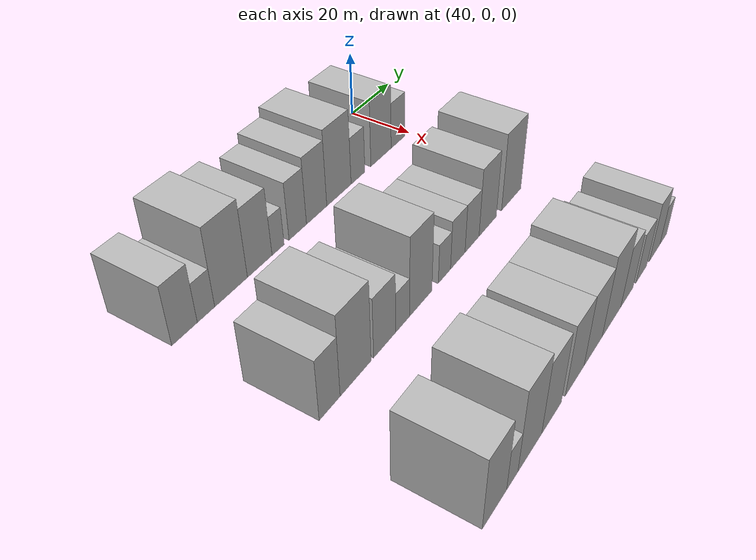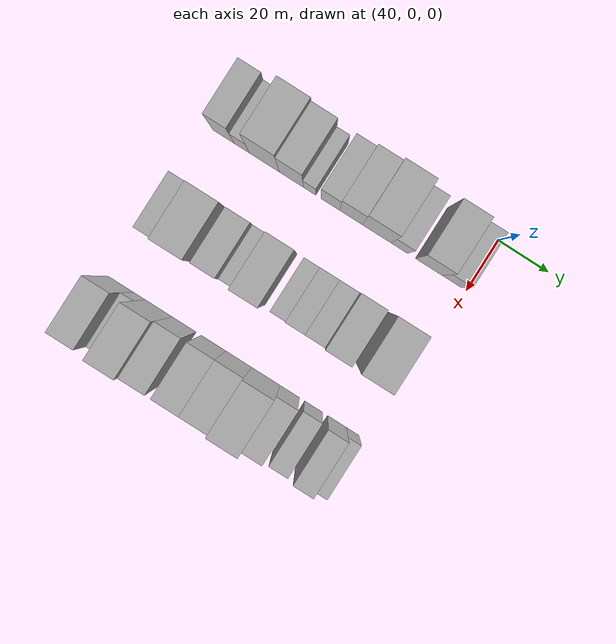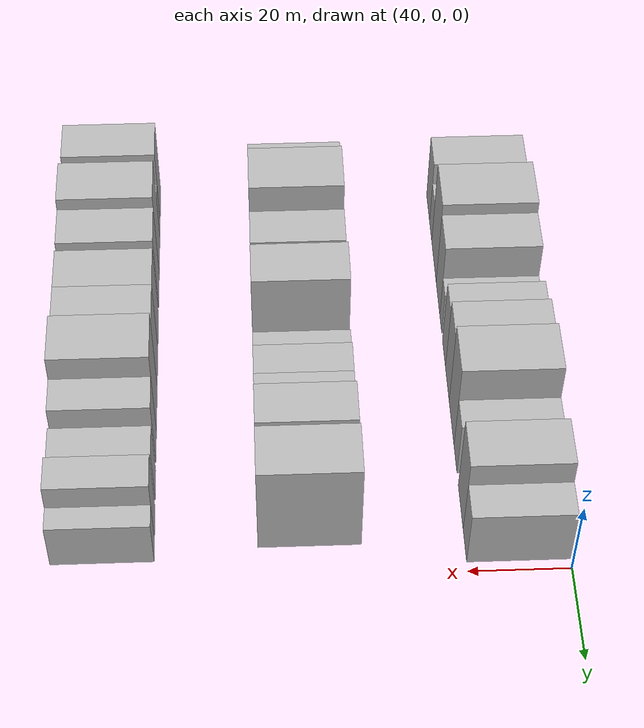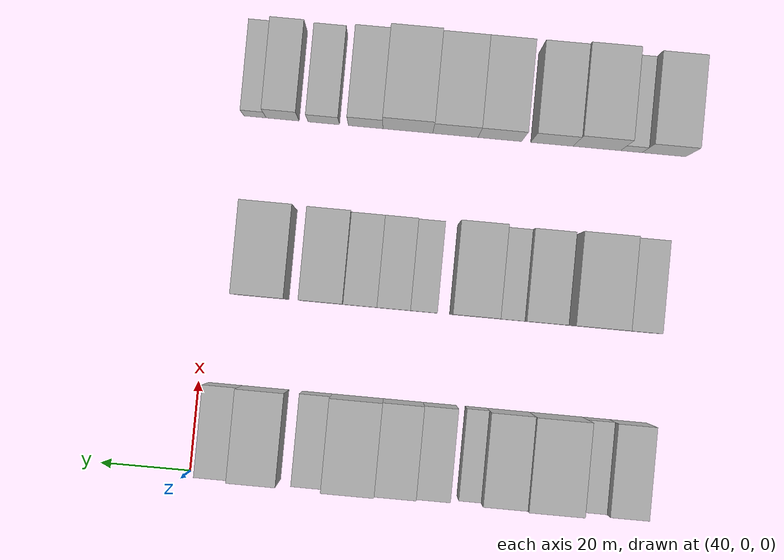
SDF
<sdf version="1.6">
 <world name="default">
  <model name="building_30">
   <static>1</static>
   <pose>50.0000 -95.8908 0 0.000000 0.000000 0.000000</pose>
   <link name="link">
    <pose>0 0 9.00 0 0 0</pose>
    <collision name="collision"><geometry><box><size>20.0000 8.3976 18.0000</size></box></geometry></collision>
    <visual name="visual">
     <cast_shadows>0</cast_shadows>
     <geometry><box><size>20.0000 8.3976 18.0000</size></box></geometry>
     <material>
      <script>
       <uri>model://HANNAS_wall/materials/scripts</uri>
       <uri>model://HANNAS_wall/materials/textures</uri>
       <name>vrc/HANNAS_wall</name>
      </script>
     </material>
    </visual>
   </link>
  </model>
  <model name="building_31">
   <static>1</static>
   <pose>50.0000 -88.7096 0 0.000000 0.000000 0.000000</pose>
   <link name="link">
    <pose>0 0 6.00 0 0 0</pose>
    <collision name="collision"><geometry><box><size>20.0000 5.9648 12.0000</size></box></geometry></collision>
    <visual name="visual">
     <cast_shadows>0</cast_shadows>
     <geometry><box><size>20.0000 5.9648 12.0000</size></box></geometry>
     <material>
      <script>
       <uri>model://HANNAS_wall/materials/scripts</uri>
       <uri>model://HANNAS_wall/materials/textures</uri>
       <name>vrc/HANNAS_wall</name>
      </script>
     </material>
    </visual>
   </link>
  </model>
  <model name="building_32">
   <static>1</static>
   <pose>50.0000 -79.7945 0 0.000000 0.000000 0.000000</pose>
   <link name="link">
    <pose>0 0 12.00 0 0 0</pose>
    <collision name="collision"><geometry><box><size>20.0000 11.8655 24.0000</size></box></geometry></collision>
    <visual name="visual">
     <cast_shadows>0</cast_shadows>
     <geometry><box><size>20.0000 11.8655 24.0000</size></box></geometry>
     <material>
      <script>
       <uri>model://HANNAS_wall/materials/scripts</uri>
       <uri>model://HANNAS_wall/materials/textures</uri>
       <name>vrc/HANNAS_wall</name>
      </script>
     </material>
    </visual>
   </link>
  </model>
  <model name="building_33">
   <static>1</static>
   <pose>50.0000 -69.1107 0 0.000000 0.000000 0.000000</pose>
   <link name="link">
    <pose>0 0 10.50 0 0 0</pose>
    <collision name="collision"><geometry><box><size>20.0000 9.5022 21.0000</size></box></geometry></collision>
    <visual name="visual">
     <cast_shadows>0</cast_shadows>
     <geometry><box><size>20.0000 9.5022 21.0000</size></box></geometry>
     <material>
      <script>
       <uri>model://HANNAS_wall/materials/scripts</uri>
       <uri>model://HANNAS_wall/materials/textures</uri>
       <name>vrc/HANNAS_wall</name>
      </script>
     </material>
    </visual>
   </link>
  </model>
  <model name="building_34">
   <static>1</static>
   <pose>50.0000 -61.9324 0 0.000000 0.000000 0.000000</pose>
   <link name="link">
    <pose>0 0 6.00 0 0 0</pose>
    <collision name="collision"><geometry><box><size>20.0000 4.8543 12.0000</size></box></geometry></collision>
    <visual name="visual">
     <cast_shadows>0</cast_shadows>
     <geometry><box><size>20.0000 4.8543 12.0000</size></box></geometry>
     <material>
      <script>
       <uri>model://HANNAS_wall/materials/scripts</uri>
       <uri>model://HANNAS_wall/materials/textures</uri>
       <name>vrc/HANNAS_wall</name>
      </script>
     </material>
    </visual>
   </link>
  </model>
  <model name="building_35">
   <static>1</static>
   <pose>50.0000 -53.8134 0 0.000000 0.000000 0.000000</pose>
   <link name="link">
    <pose>0 0 9.00 0 0 0</pose>
    <collision name="collision"><geometry><box><size>20.0000 7.3838 18.0000</size></box></geometry></collision>
    <visual name="visual">
     <cast_shadows>0</cast_shadows>
     <geometry><box><size>20.0000 7.3838 18.0000</size></box></geometry>
     <material>
      <script>
       <uri>model://HANNAS_wall/materials/scripts</uri>
       <uri>model://HANNAS_wall/materials/textures</uri>
       <name>vrc/HANNAS_wall</name>
      </script>
     </material>
    </visual>
   </link>
  </model>
  <model name="building_36">
   <static>1</static>
   <pose>50.0000 -45.6521 0 0.000000 0.000000 0.000000</pose>
   <link name="link">
    <pose>0 0 10.50 0 0 0</pose>
    <collision name="collision"><geometry><box><size>20.0000 8.9389 21.0000</size></box></geometry></collision>
    <visual name="visual">
     <cast_shadows>0</cast_shadows>
     <geometry><box><size>20.0000 8.9389 21.0000</size></box></geometry>
     <material>
      <script>
       <uri>model://HANNAS_wall/materials/scripts</uri>
       <uri>model://HANNAS_wall/materials/textures</uri>
       <name>vrc/HANNAS_wall</name>
      </script>
     </material>
    </visual>
   </link>
  </model>
  <model name="building_37">
   <static>1</static>
   <pose>50.0000 -35.5213 0 0.000000 0.000000 0.000000</pose>
   <link name="link">
    <pose>0 0 12.00 0 0 0</pose>
    <collision name="collision"><geometry><box><size>20.0000 11.3226 24.0000</size></box></geometry></collision>
    <visual name="visual">
     <cast_shadows>0</cast_shadows>
     <geometry><box><size>20.0000 11.3226 24.0000</size></box></geometry>
     <material>
      <script>
       <uri>model://HANNAS_wall/materials/scripts</uri>
       <uri>model://HANNAS_wall/materials/textures</uri>
       <name>vrc/HANNAS_wall</name>
      </script>
     </material>
    </visual>
   </link>
  </model>
  <model name="building_38">
   <static>1</static>
   <pose>50.0000 -26.5018 0 0.000000 0.000000 0.000000</pose>
   <link name="link">
    <pose>0 0 7.50 0 0 0</pose>
    <collision name="collision"><geometry><box><size>20.0000 6.7164 15.0000</size></box></geometry></collision>
    <visual name="visual">
     <cast_shadows>0</cast_shadows>
     <geometry><box><size>20.0000 6.7164 15.0000</size></box></geometry>
     <material>
      <script>
       <uri>model://HANNAS_wall/materials/scripts</uri>
       <uri>model://HANNAS_wall/materials/textures</uri>
       <name>vrc/HANNAS_wall</name>
      </script>
     </material>
    </visual>
   </link>
  </model>
  <model name="building_39">
   <static>1</static>
   <pose>50.0000 -14.8969 0 0.000000 0.000000 0.000000</pose>
   <link name="link">
    <pose>0 0 10.50 0 0 0</pose>
    <collision name="collision"><geometry><box><size>20.0000 10.4936 21.0000</size></box></geometry></collision>
    <visual name="visual">
     <cast_shadows>0</cast_shadows>
     <geometry><box><size>20.0000 10.4936 21.0000</size></box></geometry>
     <material>
      <script>
       <uri>model://HANNAS_wall/materials/scripts</uri>
       <uri>model://HANNAS_wall/materials/textures</uri>
       <name>vrc/HANNAS_wall</name>
      </script>
     </material>
    </visual>
   </link>
  </model>
  <model name="building_40">
   <static>1</static>
   <pose>50.0000 -5.9136 0 0.000000 0.000000 0.000000</pose>
   <link name="link">
    <pose>0 0 7.50 0 0 0</pose>
    <collision name="collision"><geometry><box><size>20.0000 7.4729 15.0000</size></box></geometry></collision>
    <visual name="visual">
     <cast_shadows>0</cast_shadows>
     <geometry><box><size>20.0000 7.4729 15.0000</size></box></geometry>
     <material>
      <script>
       <uri>model://HANNAS_wall/materials/scripts</uri>
       <uri>model://HANNAS_wall/materials/textures</uri>
       <name>vrc/HANNAS_wall</name>
      </script>
     </material>
    </visual>
   </link>
  </model>
  <model name="building_119">
   <static>1</static>
   <pose>90.0000 -95.6875 0 0.000000 0.000000 0.000000</pose>
   <link name="link">
    <pose>0 0 9.00 0 0 0</pose>
    <collision name="collision"><geometry><box><size>20.0000 7.4646 18.0000</size></box></geometry></collision>
    <visual name="visual">
     <cast_shadows>0</cast_shadows>
     <geometry><box><size>20.0000 7.4646 18.0000</size></box></geometry>
     <material>
      <script>
       <uri>model://HANNAS_wall/materials/scripts</uri>
       <uri>model://HANNAS_wall/materials/textures</uri>
       <name>vrc/HANNAS_wall</name>
      </script>
     </material>
    </visual>
   </link>
  </model>
  <model name="building_120">
   <static>1</static>
   <pose>90.0000 -86.0916 0 0.000000 0.000000 0.000000</pose>
   <link name="link">
    <pose>0 0 12.00 0 0 0</pose>
    <collision name="collision"><geometry><box><size>20.0000 11.7271 24.0000</size></box></geometry></collision>
    <visual name="visual">
     <cast_shadows>0</cast_shadows>
     <geometry><box><size>20.0000 11.7271 24.0000</size></box></geometry>
     <material>
      <script>
       <uri>model://HANNAS_wall/materials/scripts</uri>
       <uri>model://HANNAS_wall/materials/textures</uri>
       <name>vrc/HANNAS_wall</name>
      </script>
     </material>
    </visual>
   </link>
  </model>
  <model name="building_121">
   <static>1</static>
   <pose>90.0000 -74.7376 0 0.000000 0.000000 0.000000</pose>
   <link name="link">
    <pose>0 0 9.00 0 0 0</pose>
    <collision name="collision"><geometry><box><size>20.0000 8.9810 18.0000</size></box></geometry></collision>
    <visual name="visual">
     <cast_shadows>0</cast_shadows>
     <geometry><box><size>20.0000 8.9810 18.0000</size></box></geometry>
     <material>
      <script>
       <uri>model://HANNAS_wall/materials/scripts</uri>
       <uri>model://HANNAS_wall/materials/textures</uri>
       <name>vrc/HANNAS_wall</name>
      </script>
     </material>
    </visual>
   </link>
  </model>
  <model name="building_122">
   <static>1</static>
   <pose>90.0000 -67.2730 0 0.000000 0.000000 0.000000</pose>
   <link name="link">
    <pose>0 0 6.00 0 0 0</pose>
    <collision name="collision"><geometry><box><size>20.0000 5.9482 12.0000</size></box></geometry></collision>
    <visual name="visual">
     <cast_shadows>0</cast_shadows>
     <geometry><box><size>20.0000 5.9482 12.0000</size></box></geometry>
     <material>
      <script>
       <uri>model://HANNAS_wall/materials/scripts</uri>
       <uri>model://HANNAS_wall/materials/textures</uri>
       <name>vrc/HANNAS_wall</name>
      </script>
     </material>
    </visual>
   </link>
  </model>
  <model name="building_123">
   <static>1</static>
   <pose>90.0000 -59.2426 0 0.000000 0.000000 0.000000</pose>
   <link name="link">
    <pose>0 0 12.00 0 0 0</pose>
    <collision name="collision"><geometry><box><size>20.0000 10.1126 24.0000</size></box></geometry></collision>
    <visual name="visual">
     <cast_shadows>0</cast_shadows>
     <geometry><box><size>20.0000 10.1126 24.0000</size></box></geometry>
     <material>
      <script>
       <uri>model://HANNAS_wall/materials/scripts</uri>
       <uri>model://HANNAS_wall/materials/textures</uri>
       <name>vrc/HANNAS_wall</name>
      </script>
     </material>
    </visual>
   </link>
  </model>
  <model name="building_124">
   <static>1</static>
   <pose>90.0000 -48.2401 0 0.000000 0.000000 0.000000</pose>
   <link name="link">
    <pose>0 0 6.00 0 0 0</pose>
    <collision name="collision"><geometry><box><size>20.0000 5.8925 12.0000</size></box></geometry></collision>
    <visual name="visual">
     <cast_shadows>0</cast_shadows>
     <geometry><box><size>20.0000 5.8925 12.0000</size></box></geometry>
     <material>
      <script>
       <uri>model://HANNAS_wall/materials/scripts</uri>
       <uri>model://HANNAS_wall/materials/textures</uri>
       <name>vrc/HANNAS_wall</name>
      </script>
     </material>
    </visual>
   </link>
  </model>
  <model name="building_125">
   <static>1</static>
   <pose>90.0000 -41.6613 0 0.000000 0.000000 0.000000</pose>
   <link name="link">
    <pose>0 0 7.50 0 0 0</pose>
    <collision name="collision"><geometry><box><size>20.0000 7.2651 15.0000</size></box></geometry></collision>
    <visual name="visual">
     <cast_shadows>0</cast_shadows>
     <geometry><box><size>20.0000 7.2651 15.0000</size></box></geometry>
     <material>
      <script>
       <uri>model://HANNAS_wall/materials/scripts</uri>
       <uri>model://HANNAS_wall/materials/textures</uri>
       <name>vrc/HANNAS_wall</name>
      </script>
     </material>
    </visual>
   </link>
  </model>
  <model name="building_126">
   <static>1</static>
   <pose>90.0000 -34.3579 0 0.000000 0.000000 0.000000</pose>
   <link name="link">
    <pose>0 0 7.50 0 0 0</pose>
    <collision name="collision"><geometry><box><size>20.0000 7.3419 15.0000</size></box></geometry></collision>
    <visual name="visual">
     <cast_shadows>0</cast_shadows>
     <geometry><box><size>20.0000 7.3419 15.0000</size></box></geometry>
     <material>
      <script>
       <uri>model://HANNAS_wall/materials/scripts</uri>
       <uri>model://HANNAS_wall/materials/textures</uri>
       <name>vrc/HANNAS_wall</name>
      </script>
     </material>
    </visual>
   </link>
  </model>
  <model name="building_127">
   <static>1</static>
   <pose>90.0000 -25.9698 0 0.000000 0.000000 0.000000</pose>
   <link name="link">
    <pose>0 0 10.50 0 0 0</pose>
    <collision name="collision"><geometry><box><size>20.0000 9.4343 21.0000</size></box></geometry></collision>
    <visual name="visual">
     <cast_shadows>0</cast_shadows>
     <geometry><box><size>20.0000 9.4343 21.0000</size></box></geometry>
     <material>
      <script>
       <uri>model://HANNAS_wall/materials/scripts</uri>
       <uri>model://HANNAS_wall/materials/textures</uri>
       <name>vrc/HANNAS_wall</name>
      </script>
     </material>
    </visual>
   </link>
  </model>
  <model name="building_128">
   <static>1</static>
   <pose>90.0000 -12.5943 0 0.000000 0.000000 0.000000</pose>
   <link name="link">
    <pose>0 0 12.00 0 0 0</pose>
    <collision name="collision"><geometry><box><size>20.0000 11.3168 24.0000</size></box></geometry></collision>
    <visual name="visual">
     <cast_shadows>0</cast_shadows>
     <geometry><box><size>20.0000 11.3168 24.0000</size></box></geometry>
     <material>
      <script>
       <uri>model://HANNAS_wall/materials/scripts</uri>
       <uri>model://HANNAS_wall/materials/textures</uri>
       <name>vrc/HANNAS_wall</name>
      </script>
     </material>
    </visual>
   </link>
  </model>
  <model name="building_200">
   <static>1</static>
   <pose>130.0000 -98.6661 0 0.000000 0.000000 0.000000</pose>
   <link name="link">
    <pose>0 0 10.50 0 0 0</pose>
    <collision name="collision"><geometry><box><size>20.0000 9.8246 21.0000</size></box></geometry></collision>
    <visual name="visual">
     <cast_shadows>0</cast_shadows>
     <geometry><box><size>20.0000 9.8246 21.0000</size></box></geometry>
     <material>
      <script>
       <uri>model://HANNAS_wall/materials/scripts</uri>
       <uri>model://HANNAS_wall/materials/textures</uri>
       <name>vrc/HANNAS_wall</name>
      </script>
     </material>
    </visual>
   </link>
  </model>
  <model name="building_201">
   <static>1</static>
   <pose>130.0000 -91.3421 0 0.000000 0.000000 0.000000</pose>
   <link name="link">
    <pose>0 0 6.00 0 0 0</pose>
    <collision name="collision"><geometry><box><size>20.0000 4.8234 12.0000</size></box></geometry></collision>
    <visual name="visual">
     <cast_shadows>0</cast_shadows>
     <geometry><box><size>20.0000 4.8234 12.0000</size></box></geometry>
     <material>
      <script>
       <uri>model://HANNAS_wall/materials/scripts</uri>
       <uri>model://HANNAS_wall/materials/textures</uri>
       <name>vrc/HANNAS_wall</name>
      </script>
     </material>
    </visual>
   </link>
  </model>
  <model name="building_202">
   <static>1</static>
   <pose>130.0000 -83.5848 0 0.000000 0.000000 0.000000</pose>
   <link name="link">
    <pose>0 0 12.00 0 0 0</pose>
    <collision name="collision"><geometry><box><size>20.0000 10.6913 24.0000</size></box></geometry></collision>
    <visual name="visual">
     <cast_shadows>0</cast_shadows>
     <geometry><box><size>20.0000 10.6913 24.0000</size></box></geometry>
     <material>
      <script>
       <uri>model://HANNAS_wall/materials/scripts</uri>
       <uri>model://HANNAS_wall/materials/textures</uri>
       <name>vrc/HANNAS_wall</name>
      </script>
     </material>
    </visual>
   </link>
  </model>
  <model name="building_203">
   <static>1</static>
   <pose>130.0000 -73.4925 0 0.000000 0.000000 0.000000</pose>
   <link name="link">
    <pose>0 0 10.50 0 0 0</pose>
    <collision name="collision"><geometry><box><size>20.0000 9.4932 21.0000</size></box></geometry></collision>
    <visual name="visual">
     <cast_shadows>0</cast_shadows>
     <geometry><box><size>20.0000 9.4932 21.0000</size></box></geometry>
     <material>
      <script>
       <uri>model://HANNAS_wall/materials/scripts</uri>
       <uri>model://HANNAS_wall/materials/textures</uri>
       <name>vrc/HANNAS_wall</name>
      </script>
     </material>
    </visual>
   </link>
  </model>
  <model name="building_204">
   <static>1</static>
   <pose>130.0000 -61.8335 0 0.000000 0.000000 0.000000</pose>
   <link name="link">
    <pose>0 0 10.50 0 0 0</pose>
    <collision name="collision"><geometry><box><size>20.0000 9.8249 21.0000</size></box></geometry></collision>
    <visual name="visual">
     <cast_shadows>0</cast_shadows>
     <geometry><box><size>20.0000 9.8249 21.0000</size></box></geometry>
     <material>
      <script>
       <uri>model://HANNAS_wall/materials/scripts</uri>
       <uri>model://HANNAS_wall/materials/textures</uri>
       <name>vrc/HANNAS_wall</name>
      </script>
     </material>
    </visual>
   </link>
  </model>
  <model name="building_205">
   <static>1</static>
   <pose>130.0000 -51.8373 0 0.000000 0.000000 0.000000</pose>
   <link name="link">
    <pose>0 0 10.50 0 0 0</pose>
    <collision name="collision"><geometry><box><size>20.0000 10.1675 21.0000</size></box></geometry></collision>
    <visual name="visual">
     <cast_shadows>0</cast_shadows>
     <geometry><box><size>20.0000 10.1675 21.0000</size></box></geometry>
     <material>
      <script>
       <uri>model://HANNAS_wall/materials/scripts</uri>
       <uri>model://HANNAS_wall/materials/textures</uri>
       <name>vrc/HANNAS_wall</name>
      </script>
     </material>
    </visual>
   </link>
  </model>
  <model name="building_206">
   <static>1</static>
   <pose>130.0000 -41.1692 0 0.000000 0.000000 0.000000</pose>
   <link name="link">
    <pose>0 0 12.00 0 0 0</pose>
    <collision name="collision"><geometry><box><size>20.0000 11.1687 24.0000</size></box></geometry></collision>
    <visual name="visual">
     <cast_shadows>0</cast_shadows>
     <geometry><box><size>20.0000 11.1687 24.0000</size></box></geometry>
     <material>
      <script>
       <uri>model://HANNAS_wall/materials/scripts</uri>
       <uri>model://HANNAS_wall/materials/textures</uri>
       <name>vrc/HANNAS_wall</name>
      </script>
     </material>
    </visual>
   </link>
  </model>
  <model name="building_207">
   <static>1</static>
   <pose>130.0000 -31.7210 0 0.000000 0.000000 0.000000</pose>
   <link name="link">
    <pose>0 0 9.00 0 0 0</pose>
    <collision name="collision"><geometry><box><size>20.0000 7.7276 18.0000</size></box></geometry></collision>
    <visual name="visual">
     <cast_shadows>0</cast_shadows>
     <geometry><box><size>20.0000 7.7276 18.0000</size></box></geometry>
     <material>
      <script>
       <uri>model://HANNAS_wall/materials/scripts</uri>
       <uri>model://HANNAS_wall/materials/textures</uri>
       <name>vrc/HANNAS_wall</name>
      </script>
     </material>
    </visual>
   </link>
  </model>
  <model name="building_208">
   <static>1</static>
   <pose>130.0000 -22.3314 0 0.000000 0.000000 0.000000</pose>
   <link name="link">
    <pose>0 0 7.50 0 0 0</pose>
    <collision name="collision"><geometry><box><size>20.0000 7.0517 15.0000</size></box></geometry></collision>
    <visual name="visual">
     <cast_shadows>0</cast_shadows>
     <geometry><box><size>20.0000 7.0517 15.0000</size></box></geometry>
     <material>
      <script>
       <uri>model://HANNAS_wall/materials/scripts</uri>
       <uri>model://HANNAS_wall/materials/textures</uri>
       <name>vrc/HANNAS_wall</name>
      </script>
     </material>
    </visual>
   </link>
  </model>
  <model name="building_209">
   <static>1</static>
   <pose>130.0000 -13.1034 0 0.000000 0.000000 0.000000</pose>
   <link name="link">
    <pose>0 0 9.00 0 0 0</pose>
    <collision name="collision"><geometry><box><size>20.0000 7.4043 18.0000</size></box></geometry></collision>
    <visual name="visual">
     <cast_shadows>0</cast_shadows>
     <geometry><box><size>20.0000 7.4043 18.0000</size></box></geometry>
     <material>
      <script>
       <uri>model://HANNAS_wall/materials/scripts</uri>
       <uri>model://HANNAS_wall/materials/textures</uri>
       <name>vrc/HANNAS_wall</name>
      </script>
     </material>
    </visual>
   </link>
  </model>
  <model name="building_210">
   <static>1</static>
   <pose>130.0000 -6.9065 0 0.000000 0.000000 0.000000</pose>
   <link name="link">
    <pose>0 0 6.00 0 0 0</pose>
    <collision name="collision"><geometry><box><size>20.0000 4.9894 12.0000</size></box></geometry></collision>
    <visual name="visual">
     <cast_shadows>0</cast_shadows>
     <geometry><box><size>20.0000 4.9894 12.0000</size></box></geometry>
     <material>
      <script>
       <uri>model://HANNAS_wall/materials/scripts</uri>
       <uri>model://HANNAS_wall/materials/textures</uri>
       <name>vrc/HANNAS_wall</name>
      </script>
     </material>
    </visual>
   </link>
  </model>
 </world>
</sdf>
